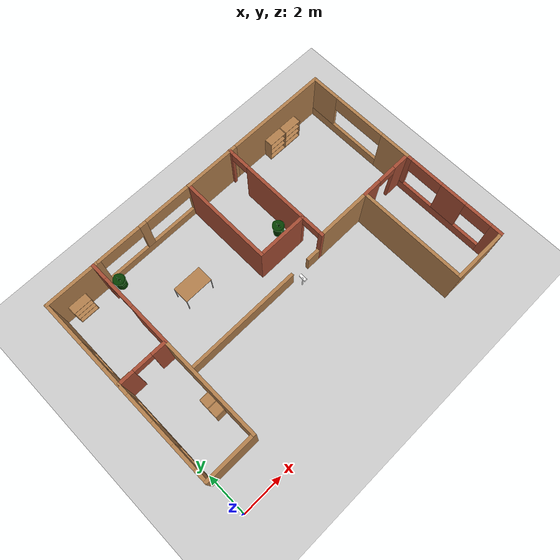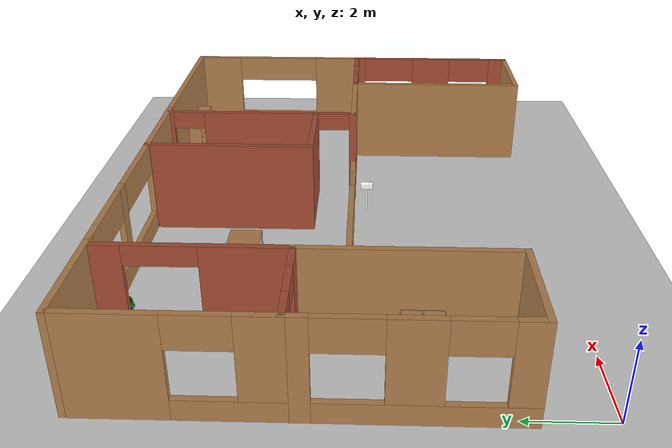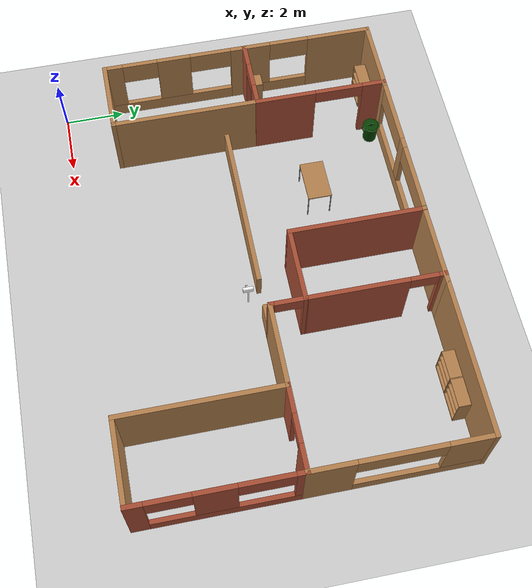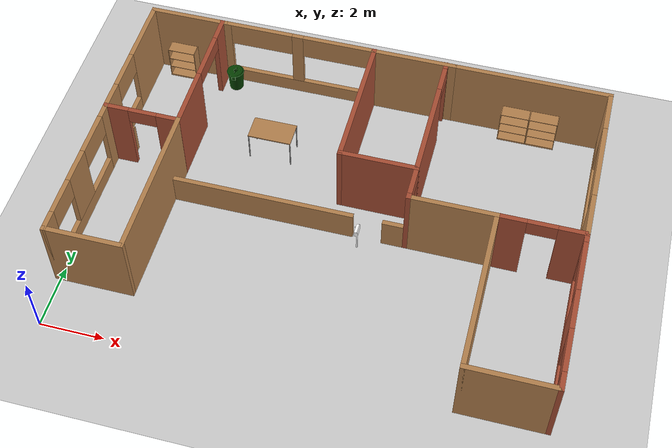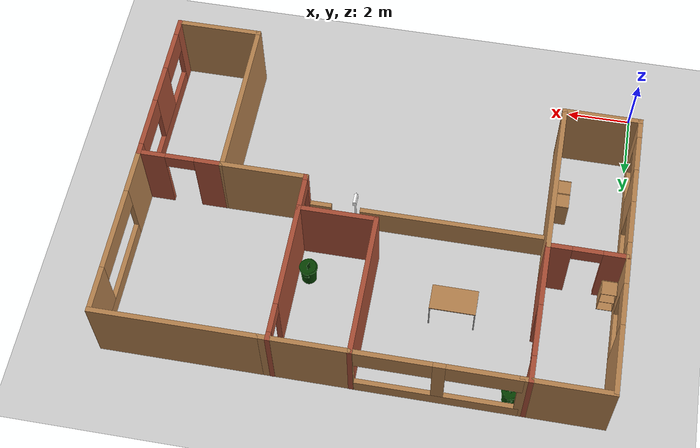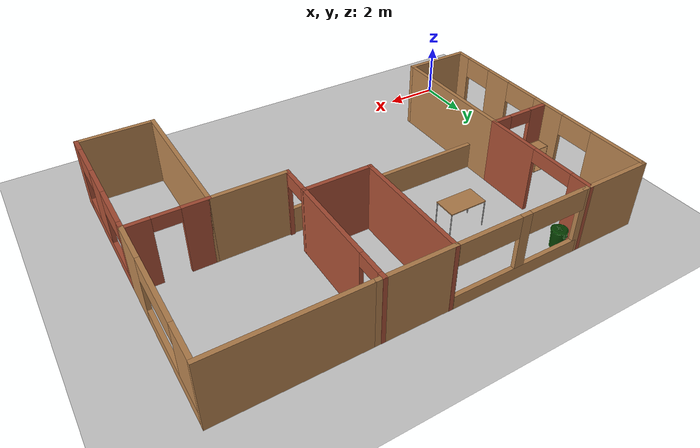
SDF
<sdf version='1.4'>
  <world name='default'>
    <!-- A global light source -->
    <include>
      <uri>model://sun</uri>
    </include>

    <!-- A ground plane -->
    <include>
      <uri>model://ground_plane</uri>
    </include>

    <physics type="ode">
      <max_step_size>0.001</max_step_size>
      <real_time_factor>1</real_time_factor>
      <real_time_update_rate>1000</real_time_update_rate>
      <ode>
        <solver>
          <type>quick</type>
          <iters>100</iters>
          <precon_iters>0</precon_iters>
          <sor>1.400000</sor>
          <use_dynamic_moi_rescaling>1</use_dynamic_moi_rescaling>
        </solver>
        <constraints>
          <cfm>0.00001</cfm>
          <erp>0.2</erp>
          <contact_max_correcting_vel>2000.000000</contact_max_correcting_vel>
          <contact_surface_layer>0.01000</contact_surface_layer>
        </constraints>
      </ode>
    </physics>

    <!-- A turtlebot house -->
    <include>
      <uri>model://turtlebot3_house</uri>
      <pose>7.4 5.6 0 0 0 0</pose>
    </include>

    <gui fullscreen='0'>
      <camera name='user_camera'>
        <pose>9.0 0.0 2.5 0.0 0.5 1.5708</pose>
        <view_controller>orbit</view_controller>
      </camera>
    </gui>
  </world>
</sdf>
